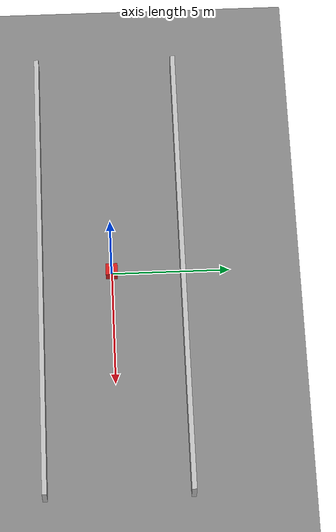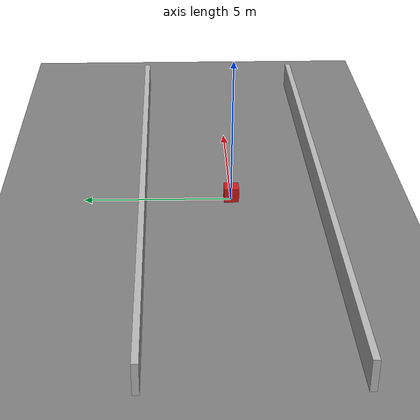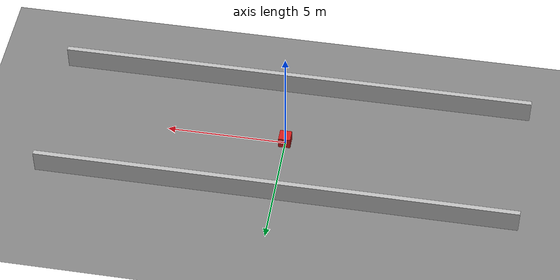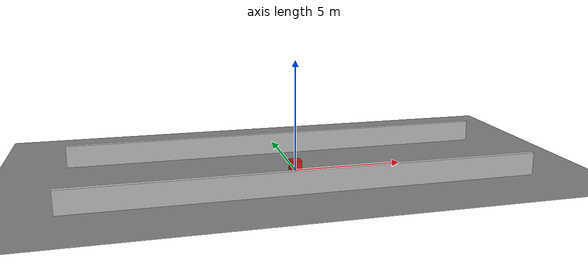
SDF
<?xml version="1.0" ?>
<sdf version="1.8">
  <world name="custom_corridor">
    <physics name="1ms" type="ignored">
      <max_step_size>0.002</max_step_size>
      <real_time_update_rate>200</real_time_update_rate>
    </physics>

    <plugin
      filename="ignition-gazebo-physics-system"
      name="ignition::gazebo::systems::Physics">
      <include_entity_names>true</include_entity_names>
    </plugin>
    <plugin
      filename="ignition-gazebo-sensors-system"
      name="ignition::gazebo::systems::Sensors">
      <render_engine>ogre2</render_engine>
    </plugin>
    <plugin
      filename="ignition-gazebo-user-commands-system"
      name="ignition::gazebo::systems::UserCommands">
    </plugin>
    <plugin
      filename="libignition-gazebo-contact-system.so"
      name="ignition::gazebo::systems::Contact">
      <topic>/world/custom_corridor/physics/contacts</topic>
    </plugin>
    <plugin
      filename="ignition-gazebo-scene-broadcaster-system"
      name="ignition::gazebo::systems::SceneBroadcaster">
    </plugin>

    <light name='sun' type='directional'>
      <pose>0 0 10 0 -0 0</pose>
      <cast_shadows>true</cast_shadows>
      <intensity>1</intensity>
      <direction>-0.5 0.5 -1</direction>
      <diffuse>1 1 1 1</diffuse>
      <specular>0.1 0.1 0.1 1</specular>
      <attenuation>
        <range>10</range>
        <linear>1</linear>
        <constant>1</constant>
        <quadratic>0</quadratic>
      </attenuation>
    </light>

    <model name='ground_plane'>
      <static>true</static>
      <link name='link'>
        <collision name='collision'>
          <geometry>
            <plane>
              <normal>0 0 1</normal>
              <size>50 50</size>
            </plane>
          </geometry>
          <surface><friction><ode/></friction></surface>
        </collision>
        <visual name='visual'>
          <geometry>
            <plane>
              <normal>0 0 1</normal>
              <size>50 50</size>
            </plane>
          </geometry>
          <material>
            <ambient>0.5 0.5 0.5 1</ambient>
            <diffuse>0.5 0.5 0.5 1</diffuse>
          </material>
        </visual>
      </link>
    </model>

    <model name="left_wall">
      <static>true</static>
      <pose>0 3 0.5 0 0 0</pose> <link name="link">
        <collision name="collision">
          <geometry><box><size>20 0.2 1</size></box></geometry>
        </collision>
        <visual name="visual">
          <geometry><box><size>20 0.2 1</size></box></geometry>
        </visual>
      </link>
    </model>

    <model name="right_wall">
      <static>true</static>
      <pose>0 -3 0.5 0 0 0</pose> <link name="link">
        <collision name="collision">
          <geometry><box><size>20 0.2 1</size></box></geometry>
        </collision>
        <visual name="visual">
          <geometry><box><size>20 0.2 1</size></box></geometry>
        </visual>
      </link>
    </model>

    <model name="center_cube">
      <static>true</static>
      <pose>0 0 0.25 0 0 0</pose> <link name="link">
        <collision name="collision">
          <geometry><box><size>0.5 0.5 0.5</size></box></geometry>
        </collision>
        <visual name="visual">
          <geometry><box><size>0.5 0.5 0.5</size></box></geometry>
          <material>
            <ambient>0.8 0.1 0.1 1</ambient> <diffuse>0.8 0.1 0.1 1</diffuse>
          </material>
        </visual>
      </link>
    </model>
  </world>
</sdf>
